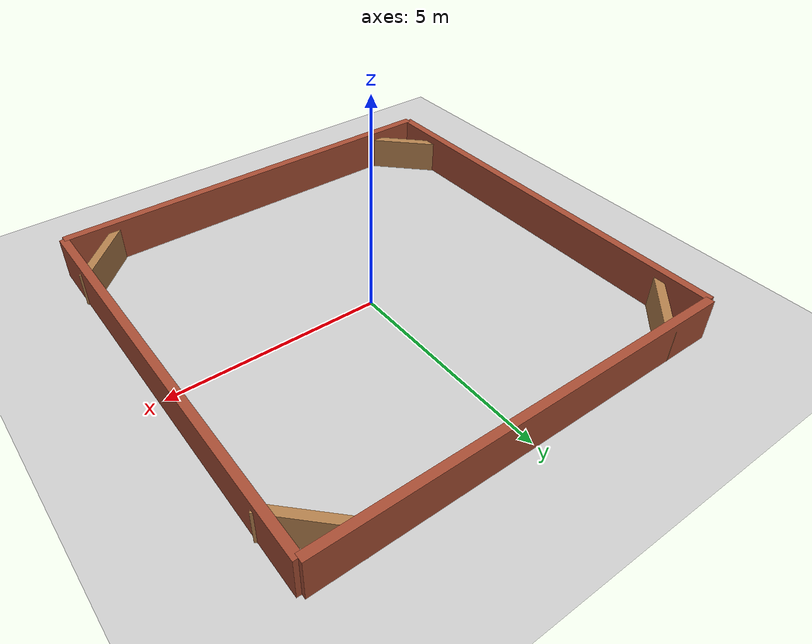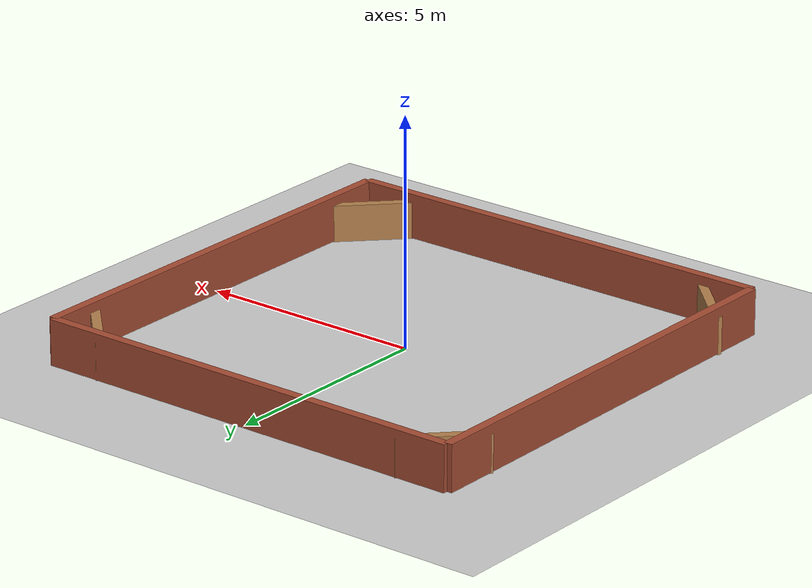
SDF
<sdf version='1.7'>
  <world name='default'>
    <light name='sun' type='directional'>
      <cast_shadows>1</cast_shadows>
      <pose>0 0 10 0 -0 0</pose>
      <diffuse>0.8 0.8 0.8 1</diffuse>
      <specular>0.2 0.2 0.2 1</specular>
      <attenuation>
        <range>1000</range>
        <constant>0.9</constant>
        <linear>0.01</linear>
        <quadratic>0.001</quadratic>
      </attenuation>
      <direction>-0.5 0.1 -0.9</direction>
      <spot>
        <inner_angle>0</inner_angle>
        <outer_angle>0</outer_angle>
        <falloff>0</falloff>
      </spot>
    </light>
    <model name='ground_plane'>
      <static>1</static>
      <link name='link'>
        <collision name='collision'>
          <geometry>
            <plane>
              <normal>0 0 1</normal>
              <size>100 100</size>
            </plane>
          </geometry>
          <surface>
            <friction>
              <ode>
                <mu>100</mu>
                <mu2>50</mu2>
              </ode>
              <torsional>
                <ode/>
              </torsional>
            </friction>
            <contact>
              <ode/>
            </contact>
            <bounce/>
          </surface>
          <max_contacts>10</max_contacts>
        </collision>
        <visual name='visual'>
          <cast_shadows>0</cast_shadows>
          <geometry>
            <plane>
              <normal>0 0 1</normal>
              <size>100 100</size>
            </plane>
          </geometry>
          <material>
            <script>
              <uri>file://media/materials/scripts/gazebo.material</uri>
              <name>Gazebo/Grey</name>
            </script>
          </material>
        </visual>
        <self_collide>0</self_collide>
        <enable_wind>0</enable_wind>
        <kinematic>0</kinematic>
      </link>
    </model>
    <gravity>0 0 -9.8</gravity>
    <magnetic_field>6e-06 2.3e-05 -4.2e-05</magnetic_field>
    <atmosphere type='adiabatic'/>
    <physics type='ode'>
      <max_step_size>0.001</max_step_size>
      <real_time_factor>1</real_time_factor>
      <real_time_update_rate>1000</real_time_update_rate>
    </physics>
    <scene>
      <ambient>0.4 0.4 0.4 1</ambient>
      <background>0.7 0.7 0.7 1</background>
      <shadows>1</shadows>
    </scene>
    <audio>
      <device>default</device>
    </audio>
    <wind/>
    <spherical_coordinates>
      <surface_model>EARTH_WGS84</surface_model>
      <latitude_deg>0</latitude_deg>
      <longitude_deg>0</longitude_deg>
      <elevation>0</elevation>
      <heading_deg>0</heading_deg>
    </spherical_coordinates>

    <model name='brick_wall'>
      <link name='link_4'>
        <inertial>
          <mass>1</mass>
          <pose>0 0 0 0 -0 0</pose>
        </inertial>
        <pose>0 -0 0 0 -0 0</pose>
        <gravity>1</gravity>
        <self_collide>0</self_collide>
        <kinematic>0</kinematic>
        <enable_wind>0</enable_wind>
        <visual name='visual'>
          <pose>0 0 0 0 -0 0</pose>
          <geometry>
            <box>
              <size>10 0.2 1</size>
            </box>
          </geometry>
          <material>
            <lighting>1</lighting>
            <script>
              <uri>file://media/materials/scripts/gazebo.material</uri>
              <name>Gazebo/Bricks</name>
            </script>
            <shader type='pixel'>
              <normal_map>__default__</normal_map>
            </shader>
            <ambient>1 1 1 1</ambient>
            <diffuse>1 1 1 1</diffuse>
            <specular>0.2 0.2 0.2 1</specular>
            <emissive>0 0 0 1</emissive>
          </material>
          <transparency>0</transparency>
          <cast_shadows>1</cast_shadows>
        </visual>
        <collision name='collision'>
          <laser_retro>0</laser_retro>
          <max_contacts>10</max_contacts>
          <pose>0 0 0 0 -0 0</pose>
          <geometry>
            <box>
              <size>10 0.2 1</size>
            </box>
          </geometry>
          <surface>
            <contact>
              <ode/>
            </contact>
            <bounce/>
            <friction>
              <torsional>
                <ode/>
              </torsional>
              <ode/>
            </friction>
          </surface>
        </collision>
      </link>
      <static>1</static>
      <allow_auto_disable>1</allow_auto_disable>
      <pose>-0.0 5.0 0.5 0 -0 0</pose>
    </model>

    <model name='brick_wall_0'>
      <link name='link_4'>
        <inertial>
          <mass>1</mass>
          <pose>0 0 0 0 -0 0</pose>
        </inertial>
        <pose>0 -0 0 0 -0 0</pose>
        <gravity>1</gravity>
        <self_collide>0</self_collide>
        <kinematic>0</kinematic>
        <enable_wind>0</enable_wind>
        <visual name='visual'>
          <pose>0 0 0 0 -0 0</pose>
          <geometry>
            <box>
              <size>10 0.2 1</size>
            </box>
          </geometry>
          <material>
            <lighting>1</lighting>
            <script>
              <uri>file://media/materials/scripts/gazebo.material</uri>
              <name>Gazebo/Bricks</name>
            </script>
            <shader type='pixel'>
              <normal_map>__default__</normal_map>
            </shader>
            <ambient>1 1 1 1</ambient>
            <diffuse>1 1 1 1</diffuse>
            <specular>0.2 0.2 0.2 1</specular>
            <emissive>0 0 0 1</emissive>
          </material>
          <transparency>0</transparency>
          <cast_shadows>1</cast_shadows>
        </visual>
        <collision name='collision'>
          <laser_retro>0</laser_retro>
          <max_contacts>10</max_contacts>
          <pose>0 0 0 0 -0 0</pose>
          <geometry>
            <box>
              <size>10 0.2 1</size>
            </box>
          </geometry>
          <surface>
            <contact>
              <ode/>
            </contact>
            <bounce/>
            <friction>
              <torsional>
                <ode/>
              </torsional>
              <ode/>
            </friction>
          </surface>
        </collision>
      </link>
      <static>1</static>
      <allow_auto_disable>1</allow_auto_disable>
      <pose>-0.000 -5.0 0.500001 0 -0 0</pose>
    </model>

    <model name='brick_wall_1'>
      <link name='link_4'>
        <inertial>
          <mass>1</mass>
          <pose>0 0 0 0 -0 0</pose>
        </inertial>
        <pose>0 -0 0 0 -0 0</pose>
        <gravity>1</gravity>
        <self_collide>0</self_collide>
        <kinematic>0</kinematic>
        <enable_wind>0</enable_wind>
        <visual name='visual'>
          <pose>0 0 0 0 -0 0</pose>
          <geometry>
            <box>
              <size>10 0.2 1</size>
            </box>
          </geometry>
          <material>
            <lighting>1</lighting>
            <script>
              <uri>file://media/materials/scripts/gazebo.material</uri>
              <name>Gazebo/Bricks</name>
            </script>
            <shader type='pixel'>
              <normal_map>__default__</normal_map>
            </shader>
            <ambient>1 1 1 1</ambient>
            <diffuse>1 1 1 1</diffuse>
            <specular>0.2 0.2 0.2 1</specular>
            <emissive>0 0 0 1</emissive>
          </material>
          <transparency>0</transparency>
          <cast_shadows>1</cast_shadows>
        </visual>
        <collision name='collision'>
          <laser_retro>0</laser_retro>
          <max_contacts>10</max_contacts>
          <pose>0 0 0 0 -0 0</pose>
          <geometry>
            <box>
              <size>10 0.2 1</size>
            </box>
          </geometry>
          <surface>
            <contact>
              <ode/>
            </contact>
            <bounce/>
            <friction>
              <torsional>
                <ode/>
              </torsional>
              <ode/>
            </friction>
          </surface>
        </collision>
      </link>
      <static>1</static>
      <allow_auto_disable>1</allow_auto_disable>
      <pose>-5.0 0.0 0.5 0 0 -1.56843</pose>
    </model>

    <model name='brick_wall_2'>
      <link name='link_4'>
        <inertial>
          <mass>1</mass>
          <pose>0 0 0 0 -0 0</pose>
        </inertial>
        <pose>0 -0 0 0 -0 0</pose>
        <gravity>1</gravity>
        <self_collide>0</self_collide>
        <kinematic>0</kinematic>
        <enable_wind>0</enable_wind>
        <visual name='visual'>
          <pose>0 0 0 0 -0 0</pose>
          <geometry>
            <box>
              <size>10 0.2 1</size>
            </box>
          </geometry>
          <material>
            <lighting>1</lighting>
            <script>
              <uri>file://media/materials/scripts/gazebo.material</uri>
              <name>Gazebo/Bricks</name>
            </script>
            <shader type='pixel'>
              <normal_map>__default__</normal_map>
            </shader>
            <ambient>1 1 1 1</ambient>
            <diffuse>1 1 1 1</diffuse>
            <specular>0.2 0.2 0.2 1</specular>
            <emissive>0 0 0 1</emissive>
          </material>
          <transparency>0</transparency>
          <cast_shadows>1</cast_shadows>
        </visual>
        <collision name='collision'>
          <laser_retro>0</laser_retro>
          <max_contacts>10</max_contacts>
          <pose>0 0 0 0 -0 0</pose>
          <geometry>
            <box>
              <size>10 0.2 1</size>
            </box>
          </geometry>
          <surface>
            <contact>
              <ode/>
            </contact>
            <bounce/>
            <friction>
              <torsional>
                <ode/>
              </torsional>
              <ode/>
            </friction>
          </surface>
        </collision>
      </link>
      <static>1</static>
      <allow_auto_disable>1</allow_auto_disable>
      <pose>5.0 -0.0 0.5 0 0 -1.5708</pose>
    </model>

    <model name='wood_corner'>
      <link name='link_5'>
        <inertial>
          <mass>0</mass>
          <pose>0 0 0 0 -0 0</pose>
        </inertial>
        <pose>-0 0 0 0 -0 0.785</pose>
        <gravity>1</gravity>
        <self_collide>0</self_collide>
        <kinematic>0</kinematic>
        <enable_wind>0</enable_wind>
        <visual name='visual'>
          <pose>0 0 0 0 -0 0</pose>
          <geometry>
            <box>
              <size>0.2 1.9 1</size>
            </box>
          </geometry>
          <material>
            <lighting>1</lighting>
            <script>
              <uri>file://media/materials/scripts/gazebo.material</uri>
              <name>Gazebo/Wood</name>
            </script>
            <shader type='pixel'>
              <normal_map>__default__</normal_map>
            </shader>
            <ambient>0.3 0.3 0.3 1</ambient>
            <diffuse>0.7 0.7 0.7 1</diffuse>
            <specular>0.01 0.01 0.01 1</specular>
            <emissive>0 0 0 1</emissive>
          </material>
          <transparency>0</transparency>
          <cast_shadows>1</cast_shadows>
        </visual>
        <collision name='collision'>
          <laser_retro>0</laser_retro>
          <max_contacts>10</max_contacts>
          <pose>0 0 0 0 -0 0</pose>
          <geometry>
            <box>
              <size>0.2 1.9 1</size>
            </box>
          </geometry>
          <surface>
            <contact>
              <ode/>
            </contact>
            <bounce/>
            <friction>
              <torsional>
                <ode/>
              </torsional>
              <ode/>
            </friction>
          </surface>
        </collision>
      </link>
      <static>1</static>
      <allow_auto_disable>1</allow_auto_disable>
      <pose>4.40116 4.36048 0.3 0 0 0</pose>
    </model>

    <model name='wood_corner_0'>
      <link name='link_5'>
        <inertial>
          <mass>0</mass>
          <pose>0 0 0 0 -0 0</pose>
        </inertial>
        <pose>-0 0 0 0 -0 0.785</pose>
        <gravity>1</gravity>
        <self_collide>0</self_collide>
        <kinematic>0</kinematic>
        <enable_wind>0</enable_wind>
        <visual name='visual'>
          <pose>0 0 0 0 -0 0</pose>
          <geometry>
            <box>
              <size>0.2 1.9 1</size>
            </box>
          </geometry>
          <material>
            <lighting>1</lighting>
            <script>
              <uri>file://media/materials/scripts/gazebo.material</uri>
              <name>Gazebo/Wood</name>
            </script>
            <shader type='pixel'>
              <normal_map>__default__</normal_map>
            </shader>
            <ambient>0.3 0.3 0.3 1</ambient>
            <diffuse>0.7 0.7 0.7 1</diffuse>
            <specular>0.01 0.01 0.01 1</specular>
            <emissive>0 0 0 1</emissive>
          </material>
          <transparency>0</transparency>
          <cast_shadows>1</cast_shadows>
        </visual>
        <collision name='collision'>
          <laser_retro>0</laser_retro>
          <max_contacts>10</max_contacts>
          <pose>0 0 0 0 -0 0</pose>
          <geometry>
            <box>
              <size>0.2 1.9 1</size>
            </box>
          </geometry>
          <surface>
            <contact>
              <ode/>
            </contact>
            <bounce/>
            <friction>
              <torsional>
                <ode/>
              </torsional>
              <ode/>
            </friction>
          </surface>
        </collision>
      </link>
      <static>1</static>
      <allow_auto_disable>1</allow_auto_disable>
      <pose>-4.40116 4.36048 0.3 0 0 -1.56218</pose>
    </model>

    <model name='wood_corner_1'>
      <link name='link_5'>
        <inertial>
          <mass>0</mass>
          <pose>0 0 0 0 -0 0</pose>
        </inertial>
        <pose>-0 0 0 0 -0 0.785</pose>
        <gravity>1</gravity>
        <self_collide>0</self_collide>
        <kinematic>0</kinematic>
        <enable_wind>0</enable_wind>
        <visual name='visual'>
          <pose>0 0 0 0 -0 0</pose>
          <geometry>
            <box>
              <size>0.2 1.9 1</size>
            </box>
          </geometry>
          <material>
            <lighting>1</lighting>
            <script>
              <uri>file://media/materials/scripts/gazebo.material</uri>
              <name>Gazebo/Wood</name>
            </script>
            <shader type='pixel'>
              <normal_map>__default__</normal_map>
            </shader>
            <ambient>0.3 0.3 0.3 1</ambient>
            <diffuse>0.7 0.7 0.7 1</diffuse>
            <specular>0.01 0.01 0.01 1</specular>
            <emissive>0 0 0 1</emissive>
          </material>
          <transparency>0</transparency>
          <cast_shadows>1</cast_shadows>
        </visual>
        <collision name='collision'>
          <laser_retro>0</laser_retro>
          <max_contacts>10</max_contacts>
          <pose>0 0 0 0 -0 0</pose>
          <geometry>
            <box>
              <size>0.2 1.9 1</size>
            </box>
          </geometry>
          <surface>
            <contact>
              <ode/>
            </contact>
            <bounce/>
            <friction>
              <torsional>
                <ode/>
              </torsional>
              <ode/>
            </friction>
          </surface>
        </collision>
      </link>
      <static>1</static>
      <allow_auto_disable>1</allow_auto_disable>
      <pose>-4.40116 -4.36048 0.3 0 -0 0</pose>
    </model>

    <model name='wood_corner_2'>
      <link name='link_5'>
        <inertial>
          <mass>0</mass>
          <pose>0 0 0 0 -0 0</pose>
        </inertial>
        <pose>-0 0 0 0 -0 0.785</pose>
        <gravity>1</gravity>
        <self_collide>0</self_collide>
        <kinematic>0</kinematic>
        <enable_wind>0</enable_wind>
        <visual name='visual'>
          <pose>0 0 0 0 -0 0</pose>
          <geometry>
            <box>
              <size>0.2 1.9 1</size>
            </box>
          </geometry>
          <material>
            <lighting>1</lighting>
            <script>
              <uri>file://media/materials/scripts/gazebo.material</uri>
              <name>Gazebo/Wood</name>
            </script>
            <shader type='pixel'>
              <normal_map>__default__</normal_map>
            </shader>
            <ambient>0.3 0.3 0.3 1</ambient>
            <diffuse>0.7 0.7 0.7 1</diffuse>
            <specular>0.01 0.01 0.01 1</specular>
            <emissive>0 0 0 1</emissive>
          </material>
          <transparency>0</transparency>
          <cast_shadows>1</cast_shadows>
        </visual>
        <collision name='collision'>
          <laser_retro>0</laser_retro>
          <max_contacts>10</max_contacts>
          <pose>0 0 0 0 -0 0</pose>
          <geometry>
            <box>
              <size>0.2 1.9 1</size>
            </box>
          </geometry>
          <surface>
            <contact>
              <ode/>
            </contact>
            <bounce/>
            <friction>
              <torsional>
                <ode/>
              </torsional>
              <ode/>
            </friction>
          </surface>
        </collision>
      </link>
      <static>1</static>
      <allow_auto_disable>1</allow_auto_disable>
      <pose>4.40116 -4.36048 0.3 0 0 -1.56218</pose>
    </model>

    <gui fullscreen='0'>
      <camera name='user_camera'>
        <pose>-10.7033 -2.79889 31.6325 0 1.1378 0.380203</pose>
        <view_controller>orbit</view_controller>
        <projection_type>perspective</projection_type>
      </camera>
    </gui>
  </world>
</sdf>
